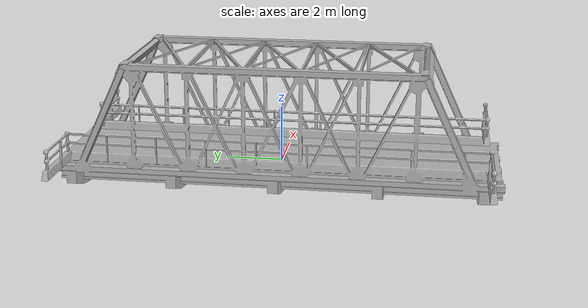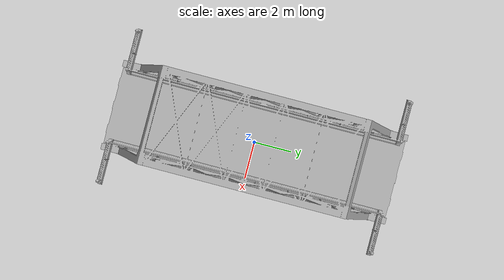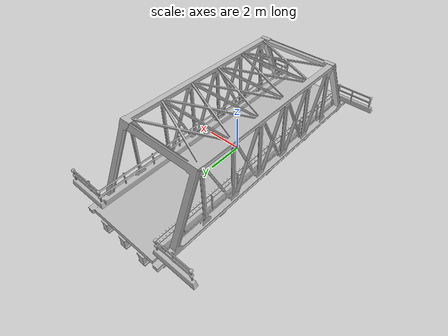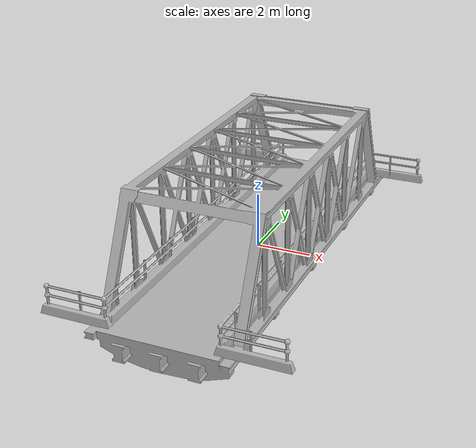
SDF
<?xml version="1.0" ?>
<sdf version="1.6">
  <model name="truss_bridge">
    <static>true</static>
    <link name="link">
      <collision name="collision">
        <geometry>
          <mesh>
            <uri>model://truss_bridge/meshes/truss_bridge.dae</uri>
          </mesh>
        </geometry>
      </collision>
      <visual name="visual">
        <geometry>
          <mesh>
            <uri>model://truss_bridge/meshes/truss_bridge.dae</uri>
          </mesh>
        </geometry>
      </visual>
    </link>
  </model>
</sdf>
